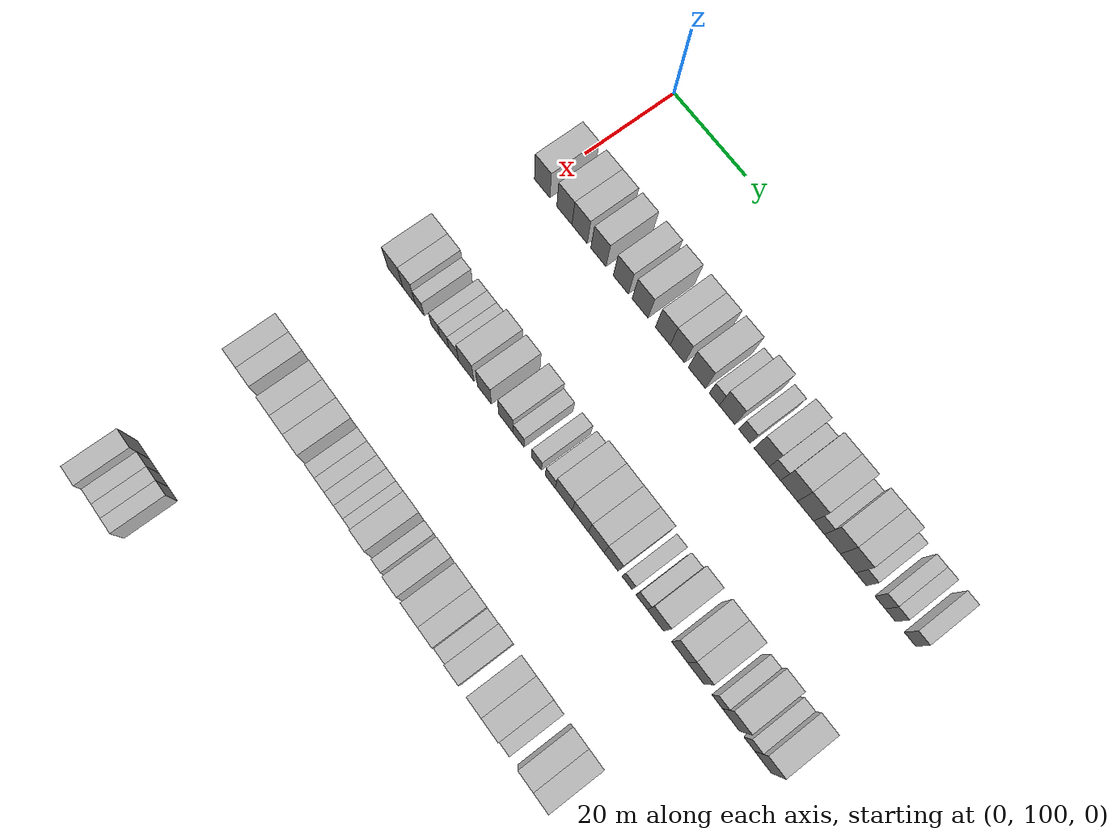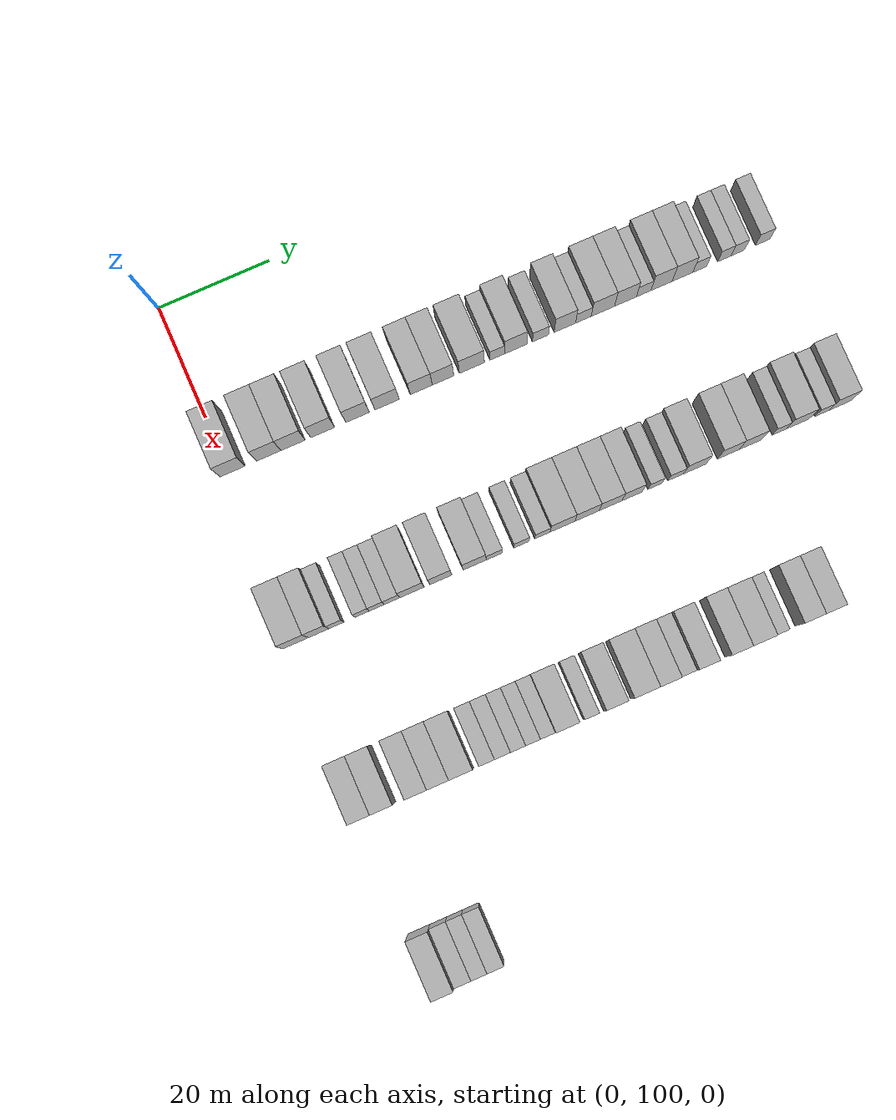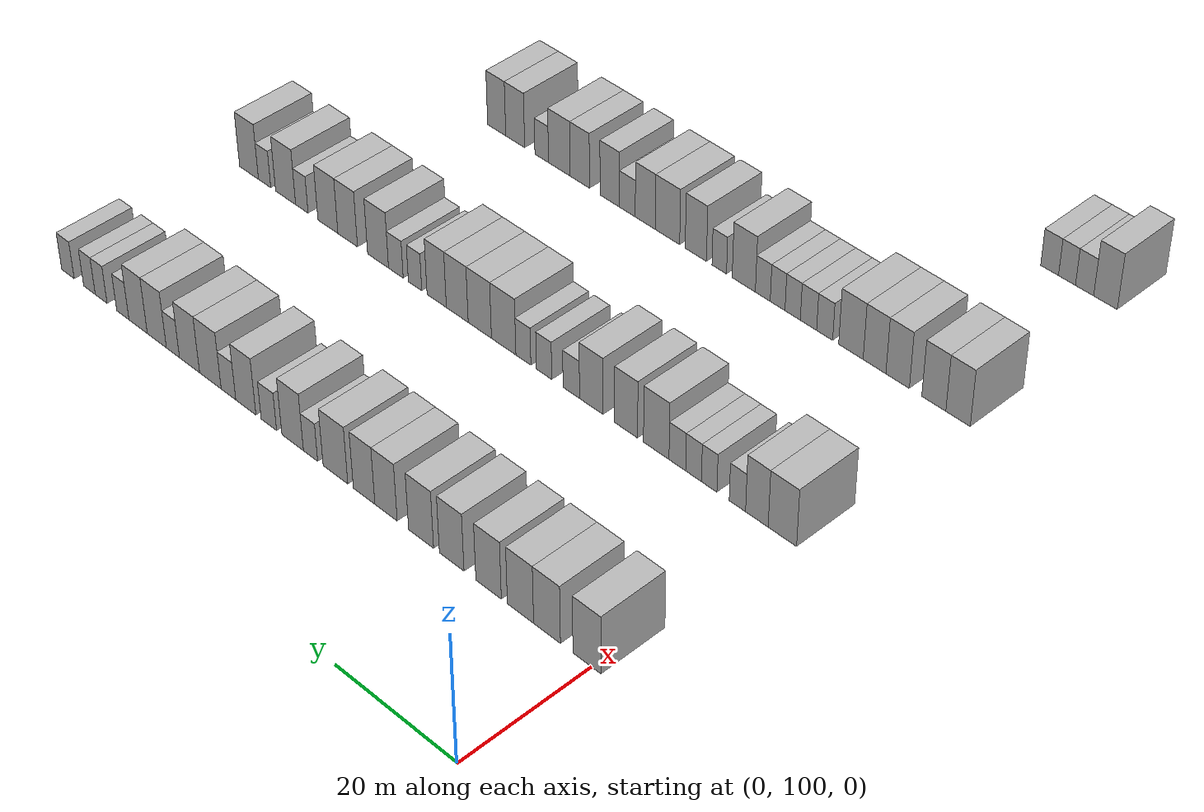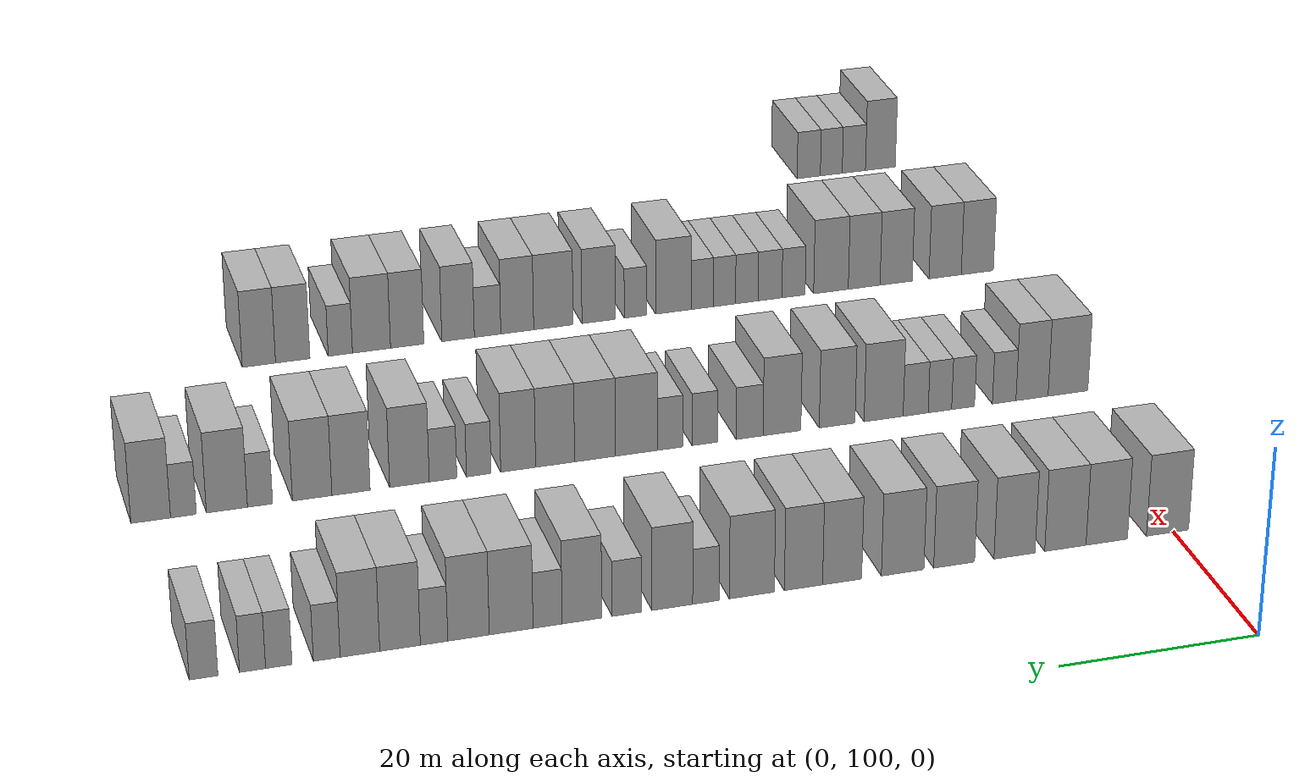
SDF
<sdf version="1.6">
 <world name="default">
  <model name="building_140">
   <static>1</static>
   <pose>25.0000 100.6862 0 0.000000 0.000000 0.000000</pose>
   <link name="link">
    <pose>0 0 4.50 0 0 0</pose>
    <collision name="collision"><geometry><box><size>10.0000 4.4617 9.0000</size></box></geometry></collision>
    <visual name="visual">
     <cast_shadows>0</cast_shadows>
     <geometry><box><size>10.0000 4.4617 9.0000</size></box></geometry>
     <material>
      <script>
       <uri>model://HANNAS_wall/materials/scripts</uri>
       <uri>model://HANNAS_wall/materials/textures</uri>
       <name>vrc/HANNAS_wall</name>
      </script>
     </material>
    </visual>
   </link>
  </model>
  <model name="building_141">
   <static>1</static>
   <pose>25.0000 107.0889 0 0.000000 0.000000 0.000000</pose>
   <link name="link">
    <pose>0 0 4.50 0 0 0</pose>
    <collision name="collision"><geometry><box><size>10.0000 4.3437 9.0000</size></box></geometry></collision>
    <visual name="visual">
     <cast_shadows>0</cast_shadows>
     <geometry><box><size>10.0000 4.3437 9.0000</size></box></geometry>
     <material>
      <script>
       <uri>model://HANNAS_wall/materials/scripts</uri>
       <uri>model://HANNAS_wall/materials/textures</uri>
       <name>vrc/HANNAS_wall</name>
      </script>
     </material>
    </visual>
   </link>
  </model>
  <model name="building_142">
   <static>1</static>
   <pose>25.0000 111.4164 0 0.000000 0.000000 0.000000</pose>
   <link name="link">
    <pose>0 0 4.50 0 0 0</pose>
    <collision name="collision"><geometry><box><size>10.0000 4.3113 9.0000</size></box></geometry></collision>
    <visual name="visual">
     <cast_shadows>0</cast_shadows>
     <geometry><box><size>10.0000 4.3113 9.0000</size></box></geometry>
     <material>
      <script>
       <uri>model://HANNAS_wall/materials/scripts</uri>
       <uri>model://HANNAS_wall/materials/textures</uri>
       <name>vrc/HANNAS_wall</name>
      </script>
     </material>
    </visual>
   </link>
  </model>
  <model name="building_143">
   <static>1</static>
   <pose>25.0000 116.7009 0 0.000000 0.000000 0.000000</pose>
   <link name="link">
    <pose>0 0 4.50 0 0 0</pose>
    <collision name="collision"><geometry><box><size>10.0000 4.2578 9.0000</size></box></geometry></collision>
    <visual name="visual">
     <cast_shadows>0</cast_shadows>
     <geometry><box><size>10.0000 4.2578 9.0000</size></box></geometry>
     <material>
      <script>
       <uri>model://HANNAS_wall/materials/scripts</uri>
       <uri>model://HANNAS_wall/materials/textures</uri>
       <name>vrc/HANNAS_wall</name>
      </script>
     </material>
    </visual>
   </link>
  </model>
  <model name="building_144">
   <static>1</static>
   <pose>25.0000 122.9277 0 0.000000 0.000000 0.000000</pose>
   <link name="link">
    <pose>0 0 4.50 0 0 0</pose>
    <collision name="collision"><geometry><box><size>10.0000 4.1958 9.0000</size></box></geometry></collision>
    <visual name="visual">
     <cast_shadows>0</cast_shadows>
     <geometry><box><size>10.0000 4.1958 9.0000</size></box></geometry>
     <material>
      <script>
       <uri>model://HANNAS_wall/materials/scripts</uri>
       <uri>model://HANNAS_wall/materials/textures</uri>
       <name>vrc/HANNAS_wall</name>
      </script>
     </material>
    </visual>
   </link>
  </model>
  <model name="building_145">
   <static>1</static>
   <pose>25.0000 128.1906 0 0.000000 0.000000 0.000000</pose>
   <link name="link">
    <pose>0 0 4.50 0 0 0</pose>
    <collision name="collision"><geometry><box><size>10.0000 4.3299 9.0000</size></box></geometry></collision>
    <visual name="visual">
     <cast_shadows>0</cast_shadows>
     <geometry><box><size>10.0000 4.3299 9.0000</size></box></geometry>
     <material>
      <script>
       <uri>model://HANNAS_wall/materials/scripts</uri>
       <uri>model://HANNAS_wall/materials/textures</uri>
       <name>vrc/HANNAS_wall</name>
      </script>
     </material>
    </visual>
   </link>
  </model>
  <model name="building_146">
   <static>1</static>
   <pose>25.0000 134.3266 0 0.000000 0.000000 0.000000</pose>
   <link name="link">
    <pose>0 0 4.50 0 0 0</pose>
    <collision name="collision"><geometry><box><size>10.0000 3.9422 9.0000</size></box></geometry></collision>
    <visual name="visual">
     <cast_shadows>0</cast_shadows>
     <geometry><box><size>10.0000 3.9422 9.0000</size></box></geometry>
     <material>
      <script>
       <uri>model://HANNAS_wall/materials/scripts</uri>
       <uri>model://HANNAS_wall/materials/textures</uri>
       <name>vrc/HANNAS_wall</name>
      </script>
     </material>
    </visual>
   </link>
  </model>
  <model name="building_147">
   <static>1</static>
   <pose>25.0000 138.2188 0 0.000000 0.000000 0.000000</pose>
   <link name="link">
    <pose>0 0 4.50 0 0 0</pose>
    <collision name="collision"><geometry><box><size>10.0000 3.8421 9.0000</size></box></geometry></collision>
    <visual name="visual">
     <cast_shadows>0</cast_shadows>
     <geometry><box><size>10.0000 3.8421 9.0000</size></box></geometry>
     <material>
      <script>
       <uri>model://HANNAS_wall/materials/scripts</uri>
       <uri>model://HANNAS_wall/materials/textures</uri>
       <name>vrc/HANNAS_wall</name>
      </script>
     </material>
    </visual>
   </link>
  </model>
  <model name="building_148">
   <static>1</static>
   <pose>25.0000 143.3813 0 0.000000 0.000000 0.000000</pose>
   <link name="link">
    <pose>0 0 4.50 0 0 0</pose>
    <collision name="collision"><geometry><box><size>10.0000 4.4831 9.0000</size></box></geometry></collision>
    <visual name="visual">
     <cast_shadows>0</cast_shadows>
     <geometry><box><size>10.0000 4.4831 9.0000</size></box></geometry>
     <material>
      <script>
       <uri>model://HANNAS_wall/materials/scripts</uri>
       <uri>model://HANNAS_wall/materials/textures</uri>
       <name>vrc/HANNAS_wall</name>
      </script>
     </material>
    </visual>
   </link>
  </model>
  <model name="building_149">
   <static>1</static>
   <pose>25.0000 147.9361 0 0.000000 0.000000 0.000000</pose>
   <link name="link">
    <pose>0 0 3.00 0 0 0</pose>
    <collision name="collision"><geometry><box><size>10.0000 2.6264 6.0000</size></box></geometry></collision>
    <visual name="visual">
     <cast_shadows>0</cast_shadows>
     <geometry><box><size>10.0000 2.6264 6.0000</size></box></geometry>
     <material>
      <script>
       <uri>model://HANNAS_wall/materials/scripts</uri>
       <uri>model://HANNAS_wall/materials/textures</uri>
       <name>vrc/HANNAS_wall</name>
      </script>
     </material>
    </visual>
   </link>
  </model>
  <model name="building_150">
   <static>1</static>
   <pose>25.0000 151.2517 0 0.000000 0.000000 0.000000</pose>
   <link name="link">
    <pose>0 0 4.50 0 0 0</pose>
    <collision name="collision"><geometry><box><size>10.0000 4.0048 9.0000</size></box></geometry></collision>
    <visual name="visual">
     <cast_shadows>0</cast_shadows>
     <geometry><box><size>10.0000 4.0048 9.0000</size></box></geometry>
     <material>
      <script>
       <uri>model://HANNAS_wall/materials/scripts</uri>
       <uri>model://HANNAS_wall/materials/textures</uri>
       <name>vrc/HANNAS_wall</name>
      </script>
     </material>
    </visual>
   </link>
  </model>
  <model name="building_151">
   <static>1</static>
   <pose>25.0000 155.7058 0 0.000000 0.000000 0.000000</pose>
   <link name="link">
    <pose>0 0 3.00 0 0 0</pose>
    <collision name="collision"><geometry><box><size>10.0000 2.9033 6.0000</size></box></geometry></collision>
    <visual name="visual">
     <cast_shadows>0</cast_shadows>
     <geometry><box><size>10.0000 2.9033 6.0000</size></box></geometry>
     <material>
      <script>
       <uri>model://HANNAS_wall/materials/scripts</uri>
       <uri>model://HANNAS_wall/materials/textures</uri>
       <name>vrc/HANNAS_wall</name>
      </script>
     </material>
    </visual>
   </link>
  </model>
  <model name="building_152">
   <static>1</static>
   <pose>25.0000 160.0832 0 0.000000 0.000000 0.000000</pose>
   <link name="link">
    <pose>0 0 4.50 0 0 0</pose>
    <collision name="collision"><geometry><box><size>10.0000 3.8514 9.0000</size></box></geometry></collision>
    <visual name="visual">
     <cast_shadows>0</cast_shadows>
     <geometry><box><size>10.0000 3.8514 9.0000</size></box></geometry>
     <material>
      <script>
       <uri>model://HANNAS_wall/materials/scripts</uri>
       <uri>model://HANNAS_wall/materials/textures</uri>
       <name>vrc/HANNAS_wall</name>
      </script>
     </material>
    </visual>
   </link>
  </model>
  <model name="building_153">
   <static>1</static>
   <pose>25.0000 163.4161 0 0.000000 0.000000 0.000000</pose>
   <link name="link">
    <pose>0 0 3.00 0 0 0</pose>
    <collision name="collision"><geometry><box><size>10.0000 2.8145 6.0000</size></box></geometry></collision>
    <visual name="visual">
     <cast_shadows>0</cast_shadows>
     <geometry><box><size>10.0000 2.8145 6.0000</size></box></geometry>
     <material>
      <script>
       <uri>model://HANNAS_wall/materials/scripts</uri>
       <uri>model://HANNAS_wall/materials/textures</uri>
       <name>vrc/HANNAS_wall</name>
      </script>
     </material>
    </visual>
   </link>
  </model>
  <model name="building_154">
   <static>1</static>
   <pose>25.0000 166.9305 0 0.000000 0.000000 0.000000</pose>
   <link name="link">
    <pose>0 0 4.50 0 0 0</pose>
    <collision name="collision"><geometry><box><size>10.0000 4.2144 9.0000</size></box></geometry></collision>
    <visual name="visual">
     <cast_shadows>0</cast_shadows>
     <geometry><box><size>10.0000 4.2144 9.0000</size></box></geometry>
     <material>
      <script>
       <uri>model://HANNAS_wall/materials/scripts</uri>
       <uri>model://HANNAS_wall/materials/textures</uri>
       <name>vrc/HANNAS_wall</name>
      </script>
     </material>
    </visual>
   </link>
  </model>
  <model name="building_155">
   <static>1</static>
   <pose>25.0000 171.0207 0 0.000000 0.000000 0.000000</pose>
   <link name="link">
    <pose>0 0 4.50 0 0 0</pose>
    <collision name="collision"><geometry><box><size>10.0000 3.9659 9.0000</size></box></geometry></collision>
    <visual name="visual">
     <cast_shadows>0</cast_shadows>
     <geometry><box><size>10.0000 3.9659 9.0000</size></box></geometry>
     <material>
      <script>
       <uri>model://HANNAS_wall/materials/scripts</uri>
       <uri>model://HANNAS_wall/materials/textures</uri>
       <name>vrc/HANNAS_wall</name>
      </script>
     </material>
    </visual>
   </link>
  </model>
  <model name="building_156">
   <static>1</static>
   <pose>25.0000 174.3121 0 0.000000 0.000000 0.000000</pose>
   <link name="link">
    <pose>0 0 3.00 0 0 0</pose>
    <collision name="collision"><geometry><box><size>10.0000 2.6170 6.0000</size></box></geometry></collision>
    <visual name="visual">
     <cast_shadows>0</cast_shadows>
     <geometry><box><size>10.0000 2.6170 6.0000</size></box></geometry>
     <material>
      <script>
       <uri>model://HANNAS_wall/materials/scripts</uri>
       <uri>model://HANNAS_wall/materials/textures</uri>
       <name>vrc/HANNAS_wall</name>
      </script>
     </material>
    </visual>
   </link>
  </model>
  <model name="building_157">
   <static>1</static>
   <pose>25.0000 177.5421 0 0.000000 0.000000 0.000000</pose>
   <link name="link">
    <pose>0 0 4.50 0 0 0</pose>
    <collision name="collision"><geometry><box><size>10.0000 3.8429 9.0000</size></box></geometry></collision>
    <visual name="visual">
     <cast_shadows>0</cast_shadows>
     <geometry><box><size>10.0000 3.8429 9.0000</size></box></geometry>
     <material>
      <script>
       <uri>model://HANNAS_wall/materials/scripts</uri>
       <uri>model://HANNAS_wall/materials/textures</uri>
       <name>vrc/HANNAS_wall</name>
      </script>
     </material>
    </visual>
   </link>
  </model>
  <model name="building_158">
   <static>1</static>
   <pose>25.0000 181.3301 0 0.000000 0.000000 0.000000</pose>
   <link name="link">
    <pose>0 0 4.50 0 0 0</pose>
    <collision name="collision"><geometry><box><size>10.0000 3.7331 9.0000</size></box></geometry></collision>
    <visual name="visual">
     <cast_shadows>0</cast_shadows>
     <geometry><box><size>10.0000 3.7331 9.0000</size></box></geometry>
     <material>
      <script>
       <uri>model://HANNAS_wall/materials/scripts</uri>
       <uri>model://HANNAS_wall/materials/textures</uri>
       <name>vrc/HANNAS_wall</name>
      </script>
     </material>
    </visual>
   </link>
  </model>
  <model name="building_159">
   <static>1</static>
   <pose>25.0000 184.4473 0 0.000000 0.000000 0.000000</pose>
   <link name="link">
    <pose>0 0 3.00 0 0 0</pose>
    <collision name="collision"><geometry><box><size>10.0000 2.5013 6.0000</size></box></geometry></collision>
    <visual name="visual">
     <cast_shadows>0</cast_shadows>
     <geometry><box><size>10.0000 2.5013 6.0000</size></box></geometry>
     <material>
      <script>
       <uri>model://HANNAS_wall/materials/scripts</uri>
       <uri>model://HANNAS_wall/materials/textures</uri>
       <name>vrc/HANNAS_wall</name>
      </script>
     </material>
    </visual>
   </link>
  </model>
  <model name="building_160">
   <static>1</static>
   <pose>25.0000 188.9262 0 0.000000 0.000000 0.000000</pose>
   <link name="link">
    <pose>0 0 3.00 0 0 0</pose>
    <collision name="collision"><geometry><box><size>10.0000 2.4566 6.0000</size></box></geometry></collision>
    <visual name="visual">
     <cast_shadows>0</cast_shadows>
     <geometry><box><size>10.0000 2.4566 6.0000</size></box></geometry>
     <material>
      <script>
       <uri>model://HANNAS_wall/materials/scripts</uri>
       <uri>model://HANNAS_wall/materials/textures</uri>
       <name>vrc/HANNAS_wall</name>
      </script>
     </material>
    </visual>
   </link>
  </model>
  <model name="building_161">
   <static>1</static>
   <pose>25.0000 191.3636 0 0.000000 0.000000 0.000000</pose>
   <link name="link">
    <pose>0 0 3.00 0 0 0</pose>
    <collision name="collision"><geometry><box><size>10.0000 2.4181 6.0000</size></box></geometry></collision>
    <visual name="visual">
     <cast_shadows>0</cast_shadows>
     <geometry><box><size>10.0000 2.4181 6.0000</size></box></geometry>
     <material>
      <script>
       <uri>model://HANNAS_wall/materials/scripts</uri>
       <uri>model://HANNAS_wall/materials/textures</uri>
       <name>vrc/HANNAS_wall</name>
      </script>
     </material>
    </visual>
   </link>
  </model>
  <model name="building_162">
   <static>1</static>
   <pose>25.0000 195.8958 0 0.000000 0.000000 0.000000</pose>
   <link name="link">
    <pose>0 0 3.00 0 0 0</pose>
    <collision name="collision"><geometry><box><size>10.0000 2.6464 6.0000</size></box></geometry></collision>
    <visual name="visual">
     <cast_shadows>0</cast_shadows>
     <geometry><box><size>10.0000 2.6464 6.0000</size></box></geometry>
     <material>
      <script>
       <uri>model://HANNAS_wall/materials/scripts</uri>
       <uri>model://HANNAS_wall/materials/textures</uri>
       <name>vrc/HANNAS_wall</name>
      </script>
     </material>
    </visual>
   </link>
  </model>
  <model name="building_368">
   <static>1</static>
   <pose>55.0000 99.1206 0 0.000000 0.000000 0.000000</pose>
   <link name="link">
    <pose>0 0 4.50 0 0 0</pose>
    <collision name="collision"><geometry><box><size>10.0000 4.4937 9.0000</size></box></geometry></collision>
    <visual name="visual">
     <cast_shadows>0</cast_shadows>
     <geometry><box><size>10.0000 4.4937 9.0000</size></box></geometry>
     <material>
      <script>
       <uri>model://HANNAS_wall/materials/scripts</uri>
       <uri>model://HANNAS_wall/materials/textures</uri>
       <name>vrc/HANNAS_wall</name>
      </script>
     </material>
    </visual>
   </link>
  </model>
  <model name="building_369">
   <static>1</static>
   <pose>55.0000 103.1735 0 0.000000 0.000000 0.000000</pose>
   <link name="link">
    <pose>0 0 4.50 0 0 0</pose>
    <collision name="collision"><geometry><box><size>10.0000 3.6120 9.0000</size></box></geometry></collision>
    <visual name="visual">
     <cast_shadows>0</cast_shadows>
     <geometry><box><size>10.0000 3.6120 9.0000</size></box></geometry>
     <material>
      <script>
       <uri>model://HANNAS_wall/materials/scripts</uri>
       <uri>model://HANNAS_wall/materials/textures</uri>
       <name>vrc/HANNAS_wall</name>
      </script>
     </material>
    </visual>
   </link>
  </model>
  <model name="building_370">
   <static>1</static>
   <pose>55.0000 106.2996 0 0.000000 0.000000 0.000000</pose>
   <link name="link">
    <pose>0 0 3.00 0 0 0</pose>
    <collision name="collision"><geometry><box><size>10.0000 2.6402 6.0000</size></box></geometry></collision>
    <visual name="visual">
     <cast_shadows>0</cast_shadows>
     <geometry><box><size>10.0000 2.6402 6.0000</size></box></geometry>
     <material>
      <script>
       <uri>model://HANNAS_wall/materials/scripts</uri>
       <uri>model://HANNAS_wall/materials/textures</uri>
       <name>vrc/HANNAS_wall</name>
      </script>
     </material>
    </visual>
   </link>
  </model>
  <model name="building_371">
   <static>1</static>
   <pose>55.0000 110.8904 0 0.000000 0.000000 0.000000</pose>
   <link name="link">
    <pose>0 0 3.00 0 0 0</pose>
    <collision name="collision"><geometry><box><size>10.0000 2.5415 6.0000</size></box></geometry></collision>
    <visual name="visual">
     <cast_shadows>0</cast_shadows>
     <geometry><box><size>10.0000 2.5415 6.0000</size></box></geometry>
     <material>
      <script>
       <uri>model://HANNAS_wall/materials/scripts</uri>
       <uri>model://HANNAS_wall/materials/textures</uri>
       <name>vrc/HANNAS_wall</name>
      </script>
     </material>
    </visual>
   </link>
  </model>
  <model name="building_372">
   <static>1</static>
   <pose>55.0000 113.4618 0 0.000000 0.000000 0.000000</pose>
   <link name="link">
    <pose>0 0 3.00 0 0 0</pose>
    <collision name="collision"><geometry><box><size>10.0000 2.6012 6.0000</size></box></geometry></collision>
    <visual name="visual">
     <cast_shadows>0</cast_shadows>
     <geometry><box><size>10.0000 2.6012 6.0000</size></box></geometry>
     <material>
      <script>
       <uri>model://HANNAS_wall/materials/scripts</uri>
       <uri>model://HANNAS_wall/materials/textures</uri>
       <name>vrc/HANNAS_wall</name>
      </script>
     </material>
    </visual>
   </link>
  </model>
  <model name="building_373">
   <static>1</static>
   <pose>55.0000 116.1478 0 0.000000 0.000000 0.000000</pose>
   <link name="link">
    <pose>0 0 3.00 0 0 0</pose>
    <collision name="collision"><geometry><box><size>10.0000 2.7707 6.0000</size></box></geometry></collision>
    <visual name="visual">
     <cast_shadows>0</cast_shadows>
     <geometry><box><size>10.0000 2.7707 6.0000</size></box></geometry>
     <material>
      <script>
       <uri>model://HANNAS_wall/materials/scripts</uri>
       <uri>model://HANNAS_wall/materials/textures</uri>
       <name>vrc/HANNAS_wall</name>
      </script>
     </material>
    </visual>
   </link>
  </model>
  <model name="building_374">
   <static>1</static>
   <pose>55.0000 119.6797 0 0.000000 0.000000 0.000000</pose>
   <link name="link">
    <pose>0 0 4.50 0 0 0</pose>
    <collision name="collision"><geometry><box><size>10.0000 4.2933 9.0000</size></box></geometry></collision>
    <visual name="visual">
     <cast_shadows>0</cast_shadows>
     <geometry><box><size>10.0000 4.2933 9.0000</size></box></geometry>
     <material>
      <script>
       <uri>model://HANNAS_wall/materials/scripts</uri>
       <uri>model://HANNAS_wall/materials/textures</uri>
       <name>vrc/HANNAS_wall</name>
      </script>
     </material>
    </visual>
   </link>
  </model>
  <model name="building_375">
   <static>1</static>
   <pose>55.0000 124.7783 0 0.000000 0.000000 0.000000</pose>
   <link name="link">
    <pose>0 0 4.50 0 0 0</pose>
    <collision name="collision"><geometry><box><size>10.0000 3.9039 9.0000</size></box></geometry></collision>
    <visual name="visual">
     <cast_shadows>0</cast_shadows>
     <geometry><box><size>10.0000 3.9039 9.0000</size></box></geometry>
     <material>
      <script>
       <uri>model://HANNAS_wall/materials/scripts</uri>
       <uri>model://HANNAS_wall/materials/textures</uri>
       <name>vrc/HANNAS_wall</name>
      </script>
     </material>
    </visual>
   </link>
  </model>
  <model name="building_376">
   <static>1</static>
   <pose>55.0000 130.7791 0 0.000000 0.000000 0.000000</pose>
   <link name="link">
    <pose>0 0 4.50 0 0 0</pose>
    <collision name="collision"><geometry><box><size>10.0000 4.0976 9.0000</size></box></geometry></collision>
    <visual name="visual">
     <cast_shadows>0</cast_shadows>
     <geometry><box><size>10.0000 4.0976 9.0000</size></box></geometry>
     <material>
      <script>
       <uri>model://HANNAS_wall/materials/scripts</uri>
       <uri>model://HANNAS_wall/materials/textures</uri>
       <name>vrc/HANNAS_wall</name>
      </script>
     </material>
    </visual>
   </link>
  </model>
  <model name="building_377">
   <static>1</static>
   <pose>55.0000 134.2772 0 0.000000 0.000000 0.000000</pose>
   <link name="link">
    <pose>0 0 3.00 0 0 0</pose>
    <collision name="collision"><geometry><box><size>10.0000 2.8985 6.0000</size></box></geometry></collision>
    <visual name="visual">
     <cast_shadows>0</cast_shadows>
     <geometry><box><size>10.0000 2.8985 6.0000</size></box></geometry>
     <material>
      <script>
       <uri>model://HANNAS_wall/materials/scripts</uri>
       <uri>model://HANNAS_wall/materials/textures</uri>
       <name>vrc/HANNAS_wall</name>
      </script>
     </material>
    </visual>
   </link>
  </model>
  <model name="building_378">
   <static>1</static>
   <pose>55.0000 139.0940 0 0.000000 0.000000 0.000000</pose>
   <link name="link">
    <pose>0 0 3.00 0 0 0</pose>
    <collision name="collision"><geometry><box><size>10.0000 2.7352 6.0000</size></box></geometry></collision>
    <visual name="visual">
     <cast_shadows>0</cast_shadows>
     <geometry><box><size>10.0000 2.7352 6.0000</size></box></geometry>
     <material>
      <script>
       <uri>model://HANNAS_wall/materials/scripts</uri>
       <uri>model://HANNAS_wall/materials/textures</uri>
       <name>vrc/HANNAS_wall</name>
      </script>
     </material>
    </visual>
   </link>
  </model>
  <model name="building_379">
   <static>1</static>
   <pose>55.0000 142.8127 0 0.000000 0.000000 0.000000</pose>
   <link name="link">
    <pose>0 0 3.00 0 0 0</pose>
    <collision name="collision"><geometry><box><size>10.0000 2.7023 6.0000</size></box></geometry></collision>
    <visual name="visual">
     <cast_shadows>0</cast_shadows>
     <geometry><box><size>10.0000 2.7023 6.0000</size></box></geometry>
     <material>
      <script>
       <uri>model://HANNAS_wall/materials/scripts</uri>
       <uri>model://HANNAS_wall/materials/textures</uri>
       <name>vrc/HANNAS_wall</name>
      </script>
     </material>
    </visual>
   </link>
  </model>
  <model name="building_380">
   <static>1</static>
   <pose>55.0000 146.3887 0 0.000000 0.000000 0.000000</pose>
   <link name="link">
    <pose>0 0 4.50 0 0 0</pose>
    <collision name="collision"><geometry><box><size>10.0000 4.4498 9.0000</size></box></geometry></collision>
    <visual name="visual">
     <cast_shadows>0</cast_shadows>
     <geometry><box><size>10.0000 4.4498 9.0000</size></box></geometry>
     <material>
      <script>
       <uri>model://HANNAS_wall/materials/scripts</uri>
       <uri>model://HANNAS_wall/materials/textures</uri>
       <name>vrc/HANNAS_wall</name>
      </script>
     </material>
    </visual>
   </link>
  </model>
  <model name="building_381">
   <static>1</static>
   <pose>55.0000 150.7610 0 0.000000 0.000000 0.000000</pose>
   <link name="link">
    <pose>0 0 4.50 0 0 0</pose>
    <collision name="collision"><geometry><box><size>10.0000 4.2948 9.0000</size></box></geometry></collision>
    <visual name="visual">
     <cast_shadows>0</cast_shadows>
     <geometry><box><size>10.0000 4.2948 9.0000</size></box></geometry>
     <material>
      <script>
       <uri>model://HANNAS_wall/materials/scripts</uri>
       <uri>model://HANNAS_wall/materials/textures</uri>
       <name>vrc/HANNAS_wall</name>
      </script>
     </material>
    </visual>
   </link>
  </model>
  <model name="building_382">
   <static>1</static>
   <pose>55.0000 154.9529 0 0.000000 0.000000 0.000000</pose>
   <link name="link">
    <pose>0 0 4.50 0 0 0</pose>
    <collision name="collision"><geometry><box><size>10.0000 4.0889 9.0000</size></box></geometry></collision>
    <visual name="visual">
     <cast_shadows>0</cast_shadows>
     <geometry><box><size>10.0000 4.0889 9.0000</size></box></geometry>
     <material>
      <script>
       <uri>model://HANNAS_wall/materials/scripts</uri>
       <uri>model://HANNAS_wall/materials/textures</uri>
       <name>vrc/HANNAS_wall</name>
      </script>
     </material>
    </visual>
   </link>
  </model>
  <model name="building_383">
   <static>1</static>
   <pose>55.0000 158.8186 0 0.000000 0.000000 0.000000</pose>
   <link name="link">
    <pose>0 0 4.50 0 0 0</pose>
    <collision name="collision"><geometry><box><size>10.0000 3.6425 9.0000</size></box></geometry></collision>
    <visual name="visual">
     <cast_shadows>0</cast_shadows>
     <geometry><box><size>10.0000 3.6425 9.0000</size></box></geometry>
     <material>
      <script>
       <uri>model://HANNAS_wall/materials/scripts</uri>
       <uri>model://HANNAS_wall/materials/textures</uri>
       <name>vrc/HANNAS_wall</name>
      </script>
     </material>
    </visual>
   </link>
  </model>
  <model name="building_384">
   <static>1</static>
   <pose>55.0000 162.9186 0 0.000000 0.000000 0.000000</pose>
   <link name="link">
    <pose>0 0 3.00 0 0 0</pose>
    <collision name="collision"><geometry><box><size>10.0000 2.5574 6.0000</size></box></geometry></collision>
    <visual name="visual">
     <cast_shadows>0</cast_shadows>
     <geometry><box><size>10.0000 2.5574 6.0000</size></box></geometry>
     <material>
      <script>
       <uri>model://HANNAS_wall/materials/scripts</uri>
       <uri>model://HANNAS_wall/materials/textures</uri>
       <name>vrc/HANNAS_wall</name>
      </script>
     </material>
    </visual>
   </link>
  </model>
  <model name="building_385">
   <static>1</static>
   <pose>55.0000 166.6149 0 0.000000 0.000000 0.000000</pose>
   <link name="link">
    <pose>0 0 3.00 0 0 0</pose>
    <collision name="collision"><geometry><box><size>10.0000 2.8353 6.0000</size></box></geometry></collision>
    <visual name="visual">
     <cast_shadows>0</cast_shadows>
     <geometry><box><size>10.0000 2.8353 6.0000</size></box></geometry>
     <material>
      <script>
       <uri>model://HANNAS_wall/materials/scripts</uri>
       <uri>model://HANNAS_wall/materials/textures</uri>
       <name>vrc/HANNAS_wall</name>
      </script>
     </material>
    </visual>
   </link>
  </model>
  <model name="building_386">
   <static>1</static>
   <pose>55.0000 170.0682 0 0.000000 0.000000 0.000000</pose>
   <link name="link">
    <pose>0 0 4.50 0 0 0</pose>
    <collision name="collision"><geometry><box><size>10.0000 4.0713 9.0000</size></box></geometry></collision>
    <visual name="visual">
     <cast_shadows>0</cast_shadows>
     <geometry><box><size>10.0000 4.0713 9.0000</size></box></geometry>
     <material>
      <script>
       <uri>model://HANNAS_wall/materials/scripts</uri>
       <uri>model://HANNAS_wall/materials/textures</uri>
       <name>vrc/HANNAS_wall</name>
      </script>
     </material>
    </visual>
   </link>
  </model>
  <model name="building_387">
   <static>1</static>
   <pose>55.0000 176.0465 0 0.000000 0.000000 0.000000</pose>
   <link name="link">
    <pose>0 0 4.50 0 0 0</pose>
    <collision name="collision"><geometry><box><size>10.0000 3.8854 9.0000</size></box></geometry></collision>
    <visual name="visual">
     <cast_shadows>0</cast_shadows>
     <geometry><box><size>10.0000 3.8854 9.0000</size></box></geometry>
     <material>
      <script>
       <uri>model://HANNAS_wall/materials/scripts</uri>
       <uri>model://HANNAS_wall/materials/textures</uri>
       <name>vrc/HANNAS_wall</name>
      </script>
     </material>
    </visual>
   </link>
  </model>
  <model name="building_388">
   <static>1</static>
   <pose>55.0000 179.9917 0 0.000000 0.000000 0.000000</pose>
   <link name="link">
    <pose>0 0 4.50 0 0 0</pose>
    <collision name="collision"><geometry><box><size>10.0000 4.0049 9.0000</size></box></geometry></collision>
    <visual name="visual">
     <cast_shadows>0</cast_shadows>
     <geometry><box><size>10.0000 4.0049 9.0000</size></box></geometry>
     <material>
      <script>
       <uri>model://HANNAS_wall/materials/scripts</uri>
       <uri>model://HANNAS_wall/materials/textures</uri>
       <name>vrc/HANNAS_wall</name>
      </script>
     </material>
    </visual>
   </link>
  </model>
  <model name="building_389">
   <static>1</static>
   <pose>55.0000 185.2584 0 0.000000 0.000000 0.000000</pose>
   <link name="link">
    <pose>0 0 3.00 0 0 0</pose>
    <collision name="collision"><geometry><box><size>10.0000 2.5283 6.0000</size></box></geometry></collision>
    <visual name="visual">
     <cast_shadows>0</cast_shadows>
     <geometry><box><size>10.0000 2.5283 6.0000</size></box></geometry>
     <material>
      <script>
       <uri>model://HANNAS_wall/materials/scripts</uri>
       <uri>model://HANNAS_wall/materials/textures</uri>
       <name>vrc/HANNAS_wall</name>
      </script>
     </material>
    </visual>
   </link>
  </model>
  <model name="building_390">
   <static>1</static>
   <pose>55.0000 188.5788 0 0.000000 0.000000 0.000000</pose>
   <link name="link">
    <pose>0 0 4.50 0 0 0</pose>
    <collision name="collision"><geometry><box><size>10.0000 4.1126 9.0000</size></box></geometry></collision>
    <visual name="visual">
     <cast_shadows>0</cast_shadows>
     <geometry><box><size>10.0000 4.1126 9.0000</size></box></geometry>
     <material>
      <script>
       <uri>model://HANNAS_wall/materials/scripts</uri>
       <uri>model://HANNAS_wall/materials/textures</uri>
       <name>vrc/HANNAS_wall</name>
      </script>
     </material>
    </visual>
   </link>
  </model>
  <model name="building_391">
   <static>1</static>
   <pose>55.0000 192.9182 0 0.000000 0.000000 0.000000</pose>
   <link name="link">
    <pose>0 0 3.00 0 0 0</pose>
    <collision name="collision"><geometry><box><size>10.0000 2.5661 6.0000</size></box></geometry></collision>
    <visual name="visual">
     <cast_shadows>0</cast_shadows>
     <geometry><box><size>10.0000 2.5661 6.0000</size></box></geometry>
     <material>
      <script>
       <uri>model://HANNAS_wall/materials/scripts</uri>
       <uri>model://HANNAS_wall/materials/textures</uri>
       <name>vrc/HANNAS_wall</name>
      </script>
     </material>
    </visual>
   </link>
  </model>
  <model name="building_392">
   <static>1</static>
   <pose>55.0000 196.1641 0 0.000000 0.000000 0.000000</pose>
   <link name="link">
    <pose>0 0 4.50 0 0 0</pose>
    <collision name="collision"><geometry><box><size>10.0000 3.9256 9.0000</size></box></geometry></collision>
    <visual name="visual">
     <cast_shadows>0</cast_shadows>
     <geometry><box><size>10.0000 3.9256 9.0000</size></box></geometry>
     <material>
      <script>
       <uri>model://HANNAS_wall/materials/scripts</uri>
       <uri>model://HANNAS_wall/materials/textures</uri>
       <name>vrc/HANNAS_wall</name>
      </script>
     </material>
    </visual>
   </link>
  </model>
  <model name="building_578">
   <static>1</static>
   <pose>85.0000 98.0626 0 0.000000 0.000000 0.000000</pose>
   <link name="link">
    <pose>0 0 4.50 0 0 0</pose>
    <collision name="collision"><geometry><box><size>10.0000 3.8558 9.0000</size></box></geometry></collision>
    <visual name="visual">
     <cast_shadows>0</cast_shadows>
     <geometry><box><size>10.0000 3.8558 9.0000</size></box></geometry>
     <material>
      <script>
       <uri>model://HANNAS_wall/materials/scripts</uri>
       <uri>model://HANNAS_wall/materials/textures</uri>
       <name>vrc/HANNAS_wall</name>
      </script>
     </material>
    </visual>
   </link>
  </model>
  <model name="building_579">
   <static>1</static>
   <pose>85.0000 101.9155 0 0.000000 0.000000 0.000000</pose>
   <link name="link">
    <pose>0 0 4.50 0 0 0</pose>
    <collision name="collision"><geometry><box><size>10.0000 3.8500 9.0000</size></box></geometry></collision>
    <visual name="visual">
     <cast_shadows>0</cast_shadows>
     <geometry><box><size>10.0000 3.8500 9.0000</size></box></geometry>
     <material>
      <script>
       <uri>model://HANNAS_wall/materials/scripts</uri>
       <uri>model://HANNAS_wall/materials/textures</uri>
       <name>vrc/HANNAS_wall</name>
      </script>
     </material>
    </visual>
   </link>
  </model>
  <model name="building_580">
   <static>1</static>
   <pose>85.0000 107.7492 0 0.000000 0.000000 0.000000</pose>
   <link name="link">
    <pose>0 0 4.50 0 0 0</pose>
    <collision name="collision"><geometry><box><size>10.0000 3.8174 9.0000</size></box></geometry></collision>
    <visual name="visual">
     <cast_shadows>0</cast_shadows>
     <geometry><box><size>10.0000 3.8174 9.0000</size></box></geometry>
     <material>
      <script>
       <uri>model://HANNAS_wall/materials/scripts</uri>
       <uri>model://HANNAS_wall/materials/textures</uri>
       <name>vrc/HANNAS_wall</name>
      </script>
     </material>
    </visual>
   </link>
  </model>
  <model name="building_581">
   <static>1</static>
   <pose>85.0000 111.5321 0 0.000000 0.000000 0.000000</pose>
   <link name="link">
    <pose>0 0 4.50 0 0 0</pose>
    <collision name="collision"><geometry><box><size>10.0000 3.7485 9.0000</size></box></geometry></collision>
    <visual name="visual">
     <cast_shadows>0</cast_shadows>
     <geometry><box><size>10.0000 3.7485 9.0000</size></box></geometry>
     <material>
      <script>
       <uri>model://HANNAS_wall/materials/scripts</uri>
       <uri>model://HANNAS_wall/materials/textures</uri>
       <name>vrc/HANNAS_wall</name>
      </script>
     </material>
    </visual>
   </link>
  </model>
  <model name="building_582">
   <static>1</static>
   <pose>85.0000 115.4431 0 0.000000 0.000000 0.000000</pose>
   <link name="link">
    <pose>0 0 4.50 0 0 0</pose>
    <collision name="collision"><geometry><box><size>10.0000 4.0735 9.0000</size></box></geometry></collision>
    <visual name="visual">
     <cast_shadows>0</cast_shadows>
     <geometry><box><size>10.0000 4.0735 9.0000</size></box></geometry>
     <material>
      <script>
       <uri>model://HANNAS_wall/materials/scripts</uri>
       <uri>model://HANNAS_wall/materials/textures</uri>
       <name>vrc/HANNAS_wall</name>
      </script>
     </material>
    </visual>
   </link>
  </model>
  <model name="building_583">
   <static>1</static>
   <pose>85.0000 119.8359 0 0.000000 0.000000 0.000000</pose>
   <link name="link">
    <pose>0 0 3.00 0 0 0</pose>
    <collision name="collision"><geometry><box><size>10.0000 2.7122 6.0000</size></box></geometry></collision>
    <visual name="visual">
     <cast_shadows>0</cast_shadows>
     <geometry><box><size>10.0000 2.7122 6.0000</size></box></geometry>
     <material>
      <script>
       <uri>model://HANNAS_wall/materials/scripts</uri>
       <uri>model://HANNAS_wall/materials/textures</uri>
       <name>vrc/HANNAS_wall</name>
      </script>
     </material>
    </visual>
   </link>
  </model>
  <model name="building_584">
   <static>1</static>
   <pose>85.0000 122.5745 0 0.000000 0.000000 0.000000</pose>
   <link name="link">
    <pose>0 0 3.00 0 0 0</pose>
    <collision name="collision"><geometry><box><size>10.0000 2.7649 6.0000</size></box></geometry></collision>
    <visual name="visual">
     <cast_shadows>0</cast_shadows>
     <geometry><box><size>10.0000 2.7649 6.0000</size></box></geometry>
     <material>
      <script>
       <uri>model://HANNAS_wall/materials/scripts</uri>
       <uri>model://HANNAS_wall/materials/textures</uri>
       <name>vrc/HANNAS_wall</name>
      </script>
     </material>
    </visual>
   </link>
  </model>
  <model name="building_585">
   <static>1</static>
   <pose>85.0000 125.2696 0 0.000000 0.000000 0.000000</pose>
   <link name="link">
    <pose>0 0 3.00 0 0 0</pose>
    <collision name="collision"><geometry><box><size>10.0000 2.6253 6.0000</size></box></geometry></collision>
    <visual name="visual">
     <cast_shadows>0</cast_shadows>
     <geometry><box><size>10.0000 2.6253 6.0000</size></box></geometry>
     <material>
      <script>
       <uri>model://HANNAS_wall/materials/scripts</uri>
       <uri>model://HANNAS_wall/materials/textures</uri>
       <name>vrc/HANNAS_wall</name>
      </script>
     </material>
    </visual>
   </link>
  </model>
  <model name="building_586">
   <static>1</static>
   <pose>85.0000 127.8553 0 0.000000 0.000000 0.000000</pose>
   <link name="link">
    <pose>0 0 3.00 0 0 0</pose>
    <collision name="collision"><geometry><box><size>10.0000 2.5461 6.0000</size></box></geometry></collision>
    <visual name="visual">
     <cast_shadows>0</cast_shadows>
     <geometry><box><size>10.0000 2.5461 6.0000</size></box></geometry>
     <material>
      <script>
       <uri>model://HANNAS_wall/materials/scripts</uri>
       <uri>model://HANNAS_wall/materials/textures</uri>
       <name>vrc/HANNAS_wall</name>
      </script>
     </material>
    </visual>
   </link>
  </model>
  <model name="building_587">
   <static>1</static>
   <pose>85.0000 130.4206 0 0.000000 0.000000 0.000000</pose>
   <link name="link">
    <pose>0 0 3.00 0 0 0</pose>
    <collision name="collision"><geometry><box><size>10.0000 2.5846 6.0000</size></box></geometry></collision>
    <visual name="visual">
     <cast_shadows>0</cast_shadows>
     <geometry><box><size>10.0000 2.5846 6.0000</size></box></geometry>
     <material>
      <script>
       <uri>model://HANNAS_wall/materials/scripts</uri>
       <uri>model://HANNAS_wall/materials/textures</uri>
       <name>vrc/HANNAS_wall</name>
      </script>
     </material>
    </visual>
   </link>
  </model>
  <model name="building_588">
   <static>1</static>
   <pose>85.0000 133.7497 0 0.000000 0.000000 0.000000</pose>
   <link name="link">
    <pose>0 0 4.50 0 0 0</pose>
    <collision name="collision"><geometry><box><size>10.0000 4.0735 9.0000</size></box></geometry></collision>
    <visual name="visual">
     <cast_shadows>0</cast_shadows>
     <geometry><box><size>10.0000 4.0735 9.0000</size></box></geometry>
     <material>
      <script>
       <uri>model://HANNAS_wall/materials/scripts</uri>
       <uri>model://HANNAS_wall/materials/textures</uri>
       <name>vrc/HANNAS_wall</name>
      </script>
     </material>
    </visual>
   </link>
  </model>
  <model name="building_589">
   <static>1</static>
   <pose>85.0000 138.0764 0 0.000000 0.000000 0.000000</pose>
   <link name="link">
    <pose>0 0 3.00 0 0 0</pose>
    <collision name="collision"><geometry><box><size>10.0000 2.5800 6.0000</size></box></geometry></collision>
    <visual name="visual">
     <cast_shadows>0</cast_shadows>
     <geometry><box><size>10.0000 2.5800 6.0000</size></box></geometry>
     <material>
      <script>
       <uri>model://HANNAS_wall/materials/scripts</uri>
       <uri>model://HANNAS_wall/materials/textures</uri>
       <name>vrc/HANNAS_wall</name>
      </script>
     </material>
    </visual>
   </link>
  </model>
  <model name="building_590">
   <static>1</static>
   <pose>85.0000 142.2741 0 0.000000 0.000000 0.000000</pose>
   <link name="link">
    <pose>0 0 4.50 0 0 0</pose>
    <collision name="collision"><geometry><box><size>10.0000 3.8153 9.0000</size></box></geometry></collision>
    <visual name="visual">
     <cast_shadows>0</cast_shadows>
     <geometry><box><size>10.0000 3.8153 9.0000</size></box></geometry>
     <material>
      <script>
       <uri>model://HANNAS_wall/materials/scripts</uri>
       <uri>model://HANNAS_wall/materials/textures</uri>
       <name>vrc/HANNAS_wall</name>
      </script>
     </material>
    </visual>
   </link>
  </model>
  <model name="building_591">
   <static>1</static>
   <pose>85.0000 147.4069 0 0.000000 0.000000 0.000000</pose>
   <link name="link">
    <pose>0 0 4.50 0 0 0</pose>
    <collision name="collision"><geometry><box><size>10.0000 4.4502 9.0000</size></box></geometry></collision>
    <visual name="visual">
     <cast_shadows>0</cast_shadows>
     <geometry><box><size>10.0000 4.4502 9.0000</size></box></geometry>
     <material>
      <script>
       <uri>model://HANNAS_wall/materials/scripts</uri>
       <uri>model://HANNAS_wall/materials/textures</uri>
       <name>vrc/HANNAS_wall</name>
      </script>
     </material>
    </visual>
   </link>
  </model>
  <model name="building_592">
   <static>1</static>
   <pose>85.0000 151.4791 0 0.000000 0.000000 0.000000</pose>
   <link name="link">
    <pose>0 0 4.50 0 0 0</pose>
    <collision name="collision"><geometry><box><size>10.0000 3.6943 9.0000</size></box></geometry></collision>
    <visual name="visual">
     <cast_shadows>0</cast_shadows>
     <geometry><box><size>10.0000 3.6943 9.0000</size></box></geometry>
     <material>
      <script>
       <uri>model://HANNAS_wall/materials/scripts</uri>
       <uri>model://HANNAS_wall/materials/textures</uri>
       <name>vrc/HANNAS_wall</name>
      </script>
     </material>
    </visual>
   </link>
  </model>
  <model name="building_593">
   <static>1</static>
   <pose>85.0000 154.8046 0 0.000000 0.000000 0.000000</pose>
   <link name="link">
    <pose>0 0 3.00 0 0 0</pose>
    <collision name="collision"><geometry><box><size>10.0000 2.9566 6.0000</size></box></geometry></collision>
    <visual name="visual">
     <cast_shadows>0</cast_shadows>
     <geometry><box><size>10.0000 2.9566 6.0000</size></box></geometry>
     <material>
      <script>
       <uri>model://HANNAS_wall/materials/scripts</uri>
       <uri>model://HANNAS_wall/materials/textures</uri>
       <name>vrc/HANNAS_wall</name>
      </script>
     </material>
    </visual>
   </link>
  </model>
  <model name="building_594">
   <static>1</static>
   <pose>85.0000 158.0945 0 0.000000 0.000000 0.000000</pose>
   <link name="link">
    <pose>0 0 4.50 0 0 0</pose>
    <collision name="collision"><geometry><box><size>10.0000 3.6232 9.0000</size></box></geometry></collision>
    <visual name="visual">
     <cast_shadows>0</cast_shadows>
     <geometry><box><size>10.0000 3.6232 9.0000</size></box></geometry>
     <material>
      <script>
       <uri>model://HANNAS_wall/materials/scripts</uri>
       <uri>model://HANNAS_wall/materials/textures</uri>
       <name>vrc/HANNAS_wall</name>
      </script>
     </material>
    </visual>
   </link>
  </model>
  <model name="building_595">
   <static>1</static>
   <pose>85.0000 163.7459 0 0.000000 0.000000 0.000000</pose>
   <link name="link">
    <pose>0 0 4.50 0 0 0</pose>
    <collision name="collision"><geometry><box><size>10.0000 3.6796 9.0000</size></box></geometry></collision>
    <visual name="visual">
     <cast_shadows>0</cast_shadows>
     <geometry><box><size>10.0000 3.6796 9.0000</size></box></geometry>
     <material>
      <script>
       <uri>model://HANNAS_wall/materials/scripts</uri>
       <uri>model://HANNAS_wall/materials/textures</uri>
       <name>vrc/HANNAS_wall</name>
      </script>
     </material>
    </visual>
   </link>
  </model>
  <model name="building_596">
   <static>1</static>
   <pose>85.0000 167.6776 0 0.000000 0.000000 0.000000</pose>
   <link name="link">
    <pose>0 0 4.50 0 0 0</pose>
    <collision name="collision"><geometry><box><size>10.0000 4.1839 9.0000</size></box></geometry></collision>
    <visual name="visual">
     <cast_shadows>0</cast_shadows>
     <geometry><box><size>10.0000 4.1839 9.0000</size></box></geometry>
     <material>
      <script>
       <uri>model://HANNAS_wall/materials/scripts</uri>
       <uri>model://HANNAS_wall/materials/textures</uri>
       <name>vrc/HANNAS_wall</name>
      </script>
     </material>
    </visual>
   </link>
  </model>
  <model name="building_597">
   <static>1</static>
   <pose>85.0000 171.0971 0 0.000000 0.000000 0.000000</pose>
   <link name="link">
    <pose>0 0 3.00 0 0 0</pose>
    <collision name="collision"><geometry><box><size>10.0000 2.6550 6.0000</size></box></geometry></collision>
    <visual name="visual">
     <cast_shadows>0</cast_shadows>
     <geometry><box><size>10.0000 2.6550 6.0000</size></box></geometry>
     <material>
      <script>
       <uri>model://HANNAS_wall/materials/scripts</uri>
       <uri>model://HANNAS_wall/materials/textures</uri>
       <name>vrc/HANNAS_wall</name>
      </script>
     </material>
    </visual>
   </link>
  </model>
  <model name="building_598">
   <static>1</static>
   <pose>85.0000 176.2921 0 0.000000 0.000000 0.000000</pose>
   <link name="link">
    <pose>0 0 4.50 0 0 0</pose>
    <collision name="collision"><geometry><box><size>10.0000 3.7350 9.0000</size></box></geometry></collision>
    <visual name="visual">
     <cast_shadows>0</cast_shadows>
     <geometry><box><size>10.0000 3.7350 9.0000</size></box></geometry>
     <material>
      <script>
       <uri>model://HANNAS_wall/materials/scripts</uri>
       <uri>model://HANNAS_wall/materials/textures</uri>
       <name>vrc/HANNAS_wall</name>
      </script>
     </material>
    </visual>
   </link>
  </model>
  <model name="building_599">
   <static>1</static>
   <pose>85.0000 179.9642 0 0.000000 0.000000 0.000000</pose>
   <link name="link">
    <pose>0 0 4.50 0 0 0</pose>
    <collision name="collision"><geometry><box><size>10.0000 3.6092 9.0000</size></box></geometry></collision>
    <visual name="visual">
     <cast_shadows>0</cast_shadows>
     <geometry><box><size>10.0000 3.6092 9.0000</size></box></geometry>
     <material>
      <script>
       <uri>model://HANNAS_wall/materials/scripts</uri>
       <uri>model://HANNAS_wall/materials/textures</uri>
       <name>vrc/HANNAS_wall</name>
      </script>
     </material>
    </visual>
   </link>
  </model>
  <model name="building_799">
   <static>1</static>
   <pose>115.0000 99.1982 0 0.000000 0.000000 0.000000</pose>
   <link name="link">
    <pose>0 0 4.50 0 0 0</pose>
    <collision name="collision"><geometry><box><size>10.0000 3.7821 9.0000</size></box></geometry></collision>
    <visual name="visual">
     <cast_shadows>0</cast_shadows>
     <geometry><box><size>10.0000 3.7821 9.0000</size></box></geometry>
     <material>
      <script>
       <uri>model://HANNAS_wall/materials/scripts</uri>
       <uri>model://HANNAS_wall/materials/textures</uri>
       <name>vrc/HANNAS_wall</name>
      </script>
     </material>
    </visual>
   </link>
  </model>
  <model name="building_800">
   <static>1</static>
   <pose>115.0000 102.5545 0 0.000000 0.000000 0.000000</pose>
   <link name="link">
    <pose>0 0 3.00 0 0 0</pose>
    <collision name="collision"><geometry><box><size>10.0000 2.9304 6.0000</size></box></geometry></collision>
    <visual name="visual">
     <cast_shadows>0</cast_shadows>
     <geometry><box><size>10.0000 2.9304 6.0000</size></box></geometry>
     <material>
      <script>
       <uri>model://HANNAS_wall/materials/scripts</uri>
       <uri>model://HANNAS_wall/materials/textures</uri>
       <name>vrc/HANNAS_wall</name>
      </script>
     </material>
    </visual>
   </link>
  </model>
  <model name="building_801">
   <static>1</static>
   <pose>115.0000 105.3983 0 0.000000 0.000000 0.000000</pose>
   <link name="link">
    <pose>0 0 3.00 0 0 0</pose>
    <collision name="collision"><geometry><box><size>10.0000 2.7573 6.0000</size></box></geometry></collision>
    <visual name="visual">
     <cast_shadows>0</cast_shadows>
     <geometry><box><size>10.0000 2.7573 6.0000</size></box></geometry>
     <material>
      <script>
       <uri>model://HANNAS_wall/materials/scripts</uri>
       <uri>model://HANNAS_wall/materials/textures</uri>
       <name>vrc/HANNAS_wall</name>
      </script>
     </material>
    </visual>
   </link>
  </model>
  <model name="building_802">
   <static>1</static>
   <pose>115.0000 108.2351 0 0.000000 0.000000 0.000000</pose>
   <link name="link">
    <pose>0 0 3.00 0 0 0</pose>
    <collision name="collision"><geometry><box><size>10.0000 2.9162 6.0000</size></box></geometry></collision>
    <visual name="visual">
     <cast_shadows>0</cast_shadows>
     <geometry><box><size>10.0000 2.9162 6.0000</size></box></geometry>
     <material>
      <script>
       <uri>model://HANNAS_wall/materials/scripts</uri>
       <uri>model://HANNAS_wall/materials/textures</uri>
       <name>vrc/HANNAS_wall</name>
      </script>
     </material>
    </visual>
   </link>
  </model>
 </world>
</sdf>
